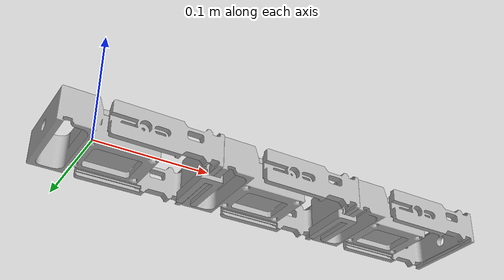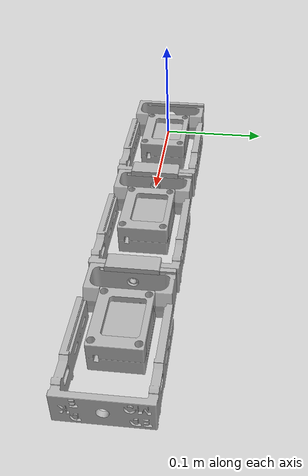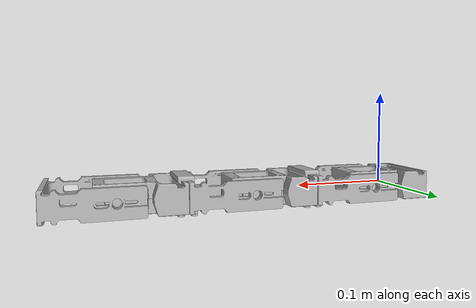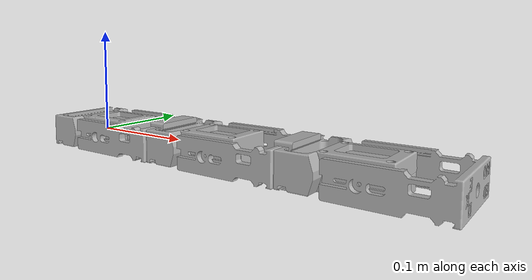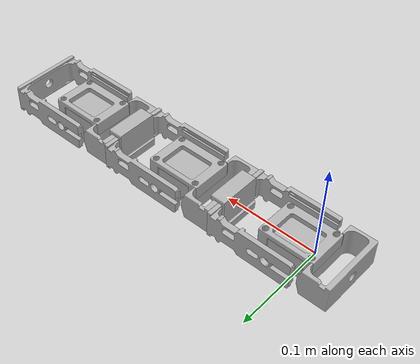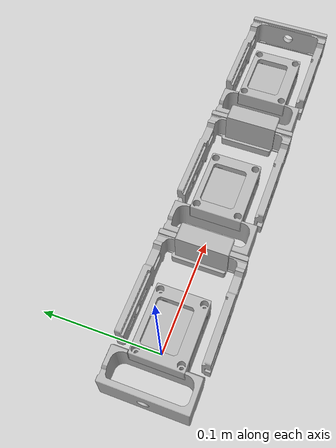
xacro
<?xml version="1.0" ?>
<robot name="edmo_snake" xmlns:xacro="http://www.ros.org/wiki/xacro">

<xacro:arg name="robot_prefix" default="" />
<xacro:property name="robot_prefix" value="$(arg robot_prefix)" />

<xacro:include filename="$(find edmo_snake_description)/urdf/materials.xacro" />
<xacro:include filename="$(find edmo_snake_description)/urdf/edmo_snake.trans" />
<xacro:include filename="$(find edmo_snake_description)/urdf/edmo_snake.gazebo" />

<xacro:property name="base_x_offset" value="0.0" />
<xacro:property name="base_y_offset" value="0.015" />
<xacro:property name="base_z_offset" value="0.02" />

<xacro:property name="arm_x_offset" value="0.027" />
<xacro:property name="arm_z_offset" value="0.02" />
<xacro:property name="cover_x_offset" value="0.02" />
<xacro:property name="cover_z_offset" value="0.02" />
<xacro:property name="straight_connector_x_offset" value="0.06" />
<xacro:property name="second_arm_x_offset" value="0.106" />

<xacro:property name="motor_x_offset" value="0.018" />
<xacro:property name="motor_y_offset" value="0.002" />
<xacro:property name="motor_z_offset" value="0.0008" />

<xacro:property name="arm_x_intertia_offset" value="0.03" />

<link name="dummy">
</link>

<link name="base_link">
  <inertial>
    <origin xyz="0.0 0.0 0.0" rpy="0 0 0"/>
    <mass value="0.040787"/>
    <inertia ixx="0.000021171851916666665" ixy="0" ixz="0" iyy="0.000028667280707362297" iyz="0" izz="0.00004372108262402896" />
  </inertial>
  <visual>
    <origin xyz="-${base_x_offset} -${base_y_offset} -${base_z_offset}" rpy="0 0 0"/>
    <geometry>
      <mesh filename="package://edmo_snake_description/meshes/base_link.stl" scale="0.001 0.001 0.001"/>
    </geometry>
    <material name="silver"/>
  </visual>
  <collision>
    <origin xyz="${base_x_offset} -${base_y_offset} -${base_z_offset}" rpy="0 0 0"/>
    <geometry>
      <mesh filename="package://edmo_snake_description/meshes/base_link.stl" scale="0.001 0.001 0.001"/>
    </geometry>
  </collision>
</link>

<link name="arm_1_1">
  <inertial>
    <origin xyz="${arm_x_intertia_offset} 0.0 0.0" rpy="0 0 0"/>
    <mass value="0.039526"/>
    <inertia ixx="0.000022493587833333332" ixy="0" ixz="0" iyy="0.00003206876133333333" iyz="0" izz="0.00004863344916666667" />
  </inertial>
  <visual>
    <origin xyz="-${arm_x_offset} -${base_y_offset} -${arm_z_offset}" rpy="0 0 0"/>
    <geometry>
      <mesh filename="package://edmo_snake_description/meshes/arm_1_1.stl" scale="0.001 0.001 0.001"/>
    </geometry>
    <material name="silver"/>
  </visual>
  <collision>
    <origin xyz="-${arm_x_offset} -${base_y_offset} -${arm_z_offset}" rpy="0 0 0"/>
    <geometry>
      <mesh filename="package://edmo_snake_description/meshes/arm_1_1.stl" scale="0.001 0.001 0.001"/>
    </geometry>
  </collision>
</link>

<link name="cover_1_1">
  <inertial>
    <origin xyz="0.0 0.0 0.0" rpy="0 0 0"/>
    <mass value="0.015429"/>
    <inertia ixx="0.0000028929375" ixy="0" ixz="0" iyy="0.00000491799375" iyz="0" izz="0.00000723234375" />
  </inertial>
  <visual>
    <origin xyz="-${cover_x_offset} -${base_y_offset} -${cover_z_offset}" rpy="0 0 0"/>
    <geometry>
      <mesh filename="package://edmo_snake_description/meshes/cover_1_1.stl" scale="0.001 0.001 0.001"/>
    </geometry>
    <material name="silver"/>
  </visual>
  <collision>
    <origin xyz="-${cover_x_offset} -${base_y_offset} -${cover_z_offset}" rpy="0 0 0"/>
    <geometry>
      <mesh filename="package://edmo_snake_description/meshes/cover_1_1.stl" scale="0.001 0.001 0.001"/>
    </geometry>
  </collision>
</link>

<link name="straight_connector_1_1">
  <inertial>
    <origin xyz="0.0 0.0 0.0" rpy="0 0 0"/>
    <mass value="0.007565"/>
    <inertia ixx="0.000002074973939693871" ixy="0" ixz="0" iyy="0.0000008986162756831851" iyz="0" izz="0.0000015031782103951184" />
  </inertial>
  <visual>
    <origin xyz="-${straight_connector_x_offset+arm_x_offset} -${base_y_offset} -${base_z_offset}" rpy="0 0 0"/>
    <geometry>
      <mesh filename="package://edmo_snake_description/meshes/straight_connector_1_1.stl" scale="0.001 0.001 0.001"/>
    </geometry>
    <material name="silver"/>
  </visual>
  <collision>
    <origin xyz="-${straight_connector_x_offset+arm_x_offset} -${base_y_offset} -${base_z_offset}" rpy="0 0 0"/>
    <geometry>
      <mesh filename="package://edmo_snake_description/meshes/straight_connector_1_1.stl" scale="0.001 0.001 0.001"/>
    </geometry>
  </collision>
</link>

<link name="clip_connector_1_1">
  <inertial>
    <origin xyz="0.0 0.0 0.0" rpy="0 0 0"/>
    <mass value="0.004143"/>
    <inertia  ixx="0.0000008225581966461201" ixy="0" ixz="0" iyy="0.00000014973490050335027" iyz="0" izz="0.0000009247245608945109" />
  </inertial>
  <visual>
    <origin xyz="-${straight_connector_x_offset+arm_x_offset} -${base_y_offset} -${base_z_offset}" rpy="0 0 0"/>
    <geometry>
      <mesh filename="package://edmo_snake_description/meshes/clip_connector_1_1.stl" scale="0.001 0.001 0.001"/>
    </geometry>
    <material name="silver"/>
  </visual>
  <collision>
    <origin xyz="-${straight_connector_x_offset+arm_x_offset} -${base_y_offset} -${base_z_offset}" rpy="0 0 0"/>
    <geometry>
      <mesh filename="package://edmo_snake_description/meshes/clip_connector_1_1.stl" scale="0.001 0.001 0.001"/>
    </geometry>
  </collision>
</link>

<link name="base_2_1">
  <inertial>
    <origin xyz="0.0 0.0 0.0" rpy="0 0 0"/>
    <mass value="0.040787"/>
    <inertia ixx="0.000021171851916666665" ixy="0" ixz="0" iyy="0.000028667280707362297" iyz="0" izz="0.00004372108262402896" />
  </inertial>
  <visual>
    <origin xyz="0.0 -${base_y_offset} -${base_z_offset}" rpy="0 0 0"/>
    <geometry>
      <mesh filename="package://edmo_snake_description/meshes/base_link.stl" scale="0.001 0.001 0.001"/>
    </geometry>
    <material name="silver"/>
  </visual>
  <collision>
    <origin xyz="0.0 -${base_y_offset} -${base_z_offset}" rpy="0 0 0"/>
    <geometry>
      <mesh filename="package://edmo_snake_description/meshes/base_link.stl" scale="0.001 0.001 0.001"/>
    </geometry>
  </collision>
</link>

<link name="cover_2_1">
  <inertial>
    <origin xyz="0.0 0.0 0.0" rpy="0 0 0"/>
    <mass value="0.015429"/>
    <inertia ixx="0.0000028929375" ixy="0" ixz="0" iyy="0.00000491799375" iyz="0" izz="0.00000723234375" />
  </inertial>
  <visual>
    <origin xyz="-${cover_x_offset} -${base_y_offset} -${cover_z_offset}" rpy="0 0 0"/>
    <geometry>
      <mesh filename="package://edmo_snake_description/meshes/cover_1_1.stl" scale="0.001 0.001 0.001"/>
    </geometry>
    <material name="silver"/>
  </visual>
  <collision>
    <origin xyz="-${cover_x_offset} -${base_y_offset} -${cover_z_offset}" rpy="0 0 0"/>
    <geometry>
      <mesh filename="package://edmo_snake_description/meshes/cover_1_1.stl" scale="0.001 0.001 0.001"/>
    </geometry>
  </collision>
</link>

<link name="arm_2_1">
  <inertial>
    <origin xyz="${arm_x_intertia_offset} 0.0 0.0" rpy="0 0 0"/>
    <mass value="0.039526"/>
    <inertia ixx="0.000022493587833333332" ixy="0" ixz="0" iyy="0.00003206876133333333" iyz="0" izz="0.00004863344916666667" />
  </inertial>
  <visual>
    <origin xyz="-${arm_x_offset} -${base_y_offset} -${arm_z_offset}" rpy="0 0 0"/>
    <geometry>
      <mesh filename="package://edmo_snake_description/meshes/arm_1_1.stl" scale="0.001 0.001 0.001"/>
    </geometry>
    <material name="silver"/>
  </visual>
  <collision>
    <origin xyz="-${arm_x_offset} -${base_y_offset} -${arm_z_offset}" rpy="0 0 0"/>
    <geometry>
      <mesh filename="package://edmo_snake_description/meshes/arm_1_1.stl" scale="0.001 0.001 0.001"/>
    </geometry>
  </collision>
</link>

<link name="straight_connector_2_1">
  <inertial>
    <origin xyz="0.0 0.0 0.0" rpy="0 0 0"/>
    <mass value="0.007565"/>
    <inertia ixx="0.000002074973939693871" ixy="0" ixz="0" iyy="0.0000008986162756831851" iyz="0" izz="0.0000015031782103951184" />
  </inertial>
  <visual>
    <origin xyz="-${straight_connector_x_offset+arm_x_offset} -${base_y_offset} -${base_z_offset}" rpy="0 0 0"/>
    <geometry>
      <mesh filename="package://edmo_snake_description/meshes/straight_connector_1_1.stl" scale="0.001 0.001 0.001"/>
    </geometry>
    <material name="silver"/>
  </visual>
  <collision>
    <origin xyz="-${straight_connector_x_offset+arm_x_offset} -${base_y_offset} -${base_z_offset}" rpy="0 0 0"/>
    <geometry>
      <mesh filename="package://edmo_snake_description/meshes/straight_connector_1_1.stl" scale="0.001 0.001 0.001"/>
    </geometry>
  </collision>
</link>

<link name="clip_connector_2_1">
  <inertial>
    <origin xyz="0.0 0.0 0.0" rpy="0 0 0"/>
    <mass value="0.004143"/>
    <inertia  ixx="0.0000008225581966461201" ixy="0" ixz="0" iyy="0.00000014973490050335027" iyz="0" izz="0.0000009247245608945109" />
  </inertial>
  <visual>
    <origin xyz="-${straight_connector_x_offset+arm_x_offset} -${base_y_offset} -${base_z_offset}" rpy="0 0 0"/>
    <geometry>
      <mesh filename="package://edmo_snake_description/meshes/clip_connector_1_1.stl" scale="0.001 0.001 0.001"/>
    </geometry>
    <material name="silver"/>
  </visual>
  <collision>
    <origin xyz="-${straight_connector_x_offset+arm_x_offset} -${base_y_offset} -${base_z_offset}" rpy="0 0 0"/>
    <geometry>
      <mesh filename="package://edmo_snake_description/meshes/clip_connector_1_1.stl" scale="0.001 0.001 0.001"/>
    </geometry>
  </collision>
</link>

<link name="base_3_1">
  <inertial>
    <origin xyz="0.0 0.0 0.0" rpy="0 0 0"/>
    <mass value="0.040787"/>
    <inertia ixx="0.000021171851916666665" ixy="0" ixz="0" iyy="0.000028667280707362297" iyz="0" izz="0.00004372108262402896" />
  </inertial>
  <visual>
    <origin xyz="0.0 -${base_y_offset} -${base_z_offset}" rpy="0 0 0"/>
    <geometry>
      <mesh filename="package://edmo_snake_description/meshes/base_link.stl" scale="0.001 0.001 0.001"/>
    </geometry>
    <material name="silver"/>
  </visual>
  <collision>
    <origin xyz="0.0 -${base_y_offset} -${base_z_offset}" rpy="0 0 0"/>
    <geometry>
      <mesh filename="package://edmo_snake_description/meshes/base_link.stl" scale="0.001 0.001 0.001"/>
    </geometry>
  </collision>
</link>

<link name="cover_3_1">
  <inertial>
    <origin xyz="0.0 0.0 0.0" rpy="0 0 0"/>
    <mass value="0.015429"/>
    <inertia ixx="0.0000028929375" ixy="0" ixz="0" iyy="0.00000491799375" iyz="0" izz="0.00000723234375" />
  </inertial>
  <visual>
    <origin xyz="-${cover_x_offset} -${base_y_offset} -${cover_z_offset}" rpy="0 0 0"/>
    <geometry>
      <mesh filename="package://edmo_snake_description/meshes/cover_1_1.stl" scale="0.001 0.001 0.001"/>
    </geometry>
    <material name="silver"/>
  </visual>
  <collision>
    <origin xyz="-${cover_x_offset} -${base_y_offset} -${cover_z_offset}" rpy="0 0 0"/>
    <geometry>
      <mesh filename="package://edmo_snake_description/meshes/cover_1_1.stl" scale="0.001 0.001 0.001"/>
    </geometry>
  </collision>
</link>

<link name="arm_3_1">
  <inertial>
    <origin xyz="${arm_x_intertia_offset} 0.0 0.0" rpy="0 0 0"/>
    <mass value="0.039526"/>
    <inertia ixx="0.000022493587833333332" ixy="0" ixz="0" iyy="0.00003206876133333333" iyz="0" izz="0.00004863344916666667" />
  </inertial>
  <visual>
    <origin xyz="-${arm_x_offset} -${base_y_offset} -${arm_z_offset}" rpy="0 0 0"/>
    <geometry>
      <mesh filename="package://edmo_snake_description/meshes/arm_1_1.stl" scale="0.001 0.001 0.001"/>
    </geometry>
    <material name="silver"/>
  </visual>
  <collision>
    <origin xyz="-${arm_x_offset} -${base_y_offset} -${arm_z_offset}" rpy="0 0 0"/>
    <geometry>
      <mesh filename="package://edmo_snake_description/meshes/arm_1_1.stl" scale="0.001 0.001 0.001"/>
    </geometry>
  </collision>
</link>

<link name="motor_box_1">
  <inertial>
    <origin xyz="0.0 0.0 0.0" rpy="0 0 0"/>
    <mass value="0.057"/>
    <inertia ixx="0.0000090309375" ixy="0" ixz="0" iyy="0.000008846874999999999" iyz="0" izz="0.000014265437499999999" />
  </inertial>
  <visual>
    <origin xyz="0.003 -0.058 -0.01" rpy="0 0 0"/>
    <geometry>
      <mesh filename="package://edmo_snake_description/meshes/motor_box_1.stl" scale="0.001 0.001 0.001"/>
    </geometry>
    <material name="silver"/>
  </visual>
  <collision>
    <origin xyz="0.003 -0.058 -0.01" rpy="0 0 0"/>
    <geometry>
      <mesh filename="package://edmo_snake_description/meshes/motor_box_1.stl" scale="0.001 0.001 0.001"/>
    </geometry>
  </collision>
</link>

<link name="motor_box_2">
  <inertial>
    <origin xyz="0.0 0.0 0.0" rpy="0 0 0"/>
    <mass value="0.057"/>
    <inertia ixx="0.0000090309375" ixy="0" ixz="0" iyy="0.000008846874999999999" iyz="0" izz="0.000014265437499999999" />
  </inertial>
  <visual>
    <origin xyz="0.003 -0.058 -0.01" rpy="0 0 0"/>
    <geometry>
      <mesh filename="package://edmo_snake_description/meshes/motor_box_1.stl" scale="0.001 0.001 0.001"/>
    </geometry>
    <material name="silver"/>
  </visual>
  <collision>
    <origin xyz="0.003 -0.058 -0.01" rpy="0 0 0"/>
    <geometry>
      <mesh filename="package://edmo_snake_description/meshes/motor_box_1.stl" scale="0.001 0.001 0.001"/>
    </geometry>
  </collision>
</link>

<link name="motor_box_3">
  <inertial>
    <origin xyz="0.0 0.0 0.0" rpy="0 0 0"/>
    <mass value="0.057"/>
    <inertia ixx="0.0000090309375" ixy="0" ixz="0" iyy="0.000008846874999999999" iyz="0" izz="0.000014265437499999999" />
  </inertial>
  <visual>
    <origin xyz="0.003 -0.058 -0.01" rpy="0 0 0"/>
    <geometry>
      <mesh filename="package://edmo_snake_description/meshes/motor_box_1.stl" scale="0.001 0.001 0.001"/>
    </geometry>
    <material name="silver"/>
  </visual>
  <collision>
    <origin xyz="0.003 -0.058 -0.01" rpy="0 0 0"/>
    <geometry>
      <mesh filename="package://edmo_snake_description/meshes/motor_box_1.stl" scale="0.001 0.001 0.001"/>
    </geometry>
  </collision>
</link>

<joint name="Rigid0" type="fixed">
  <origin xyz="0.0 0.0 0.0" rpy="0 0 0"/>
  <parent link="dummy"/>
  <child link="base_link"/>
</joint>

<joint name="Rev1" type="revolute">
  <origin xyz="${arm_x_offset} 0.0 0.0" rpy="0 0 0"/>
  <parent link="base_link"/>
  <child link="arm_1_1"/>
  <axis xyz="0.0 1.0 0.0"/>
  <!-- Joint limits -->
  <limit lower="-2.00"
        upper="2.00"
        effort="2.0"
        velocity="10.0"/>
</joint>

<joint name="Rigid2" type="fixed">
  <origin xyz="${cover_x_offset} 0.0 0.0" rpy="0 0 0"/>
  <parent link="base_link"/>
  <child link="cover_1_1"/>
</joint>

<joint name="Rigid3" type="fixed">
  <origin xyz="${straight_connector_x_offset} 0.0 0.0" rpy="0 0 0"/>
  <parent link="arm_1_1"/>
  <child link="straight_connector_1_1"/>
</joint>

<joint name="Rigid4" type="fixed">
  <origin xyz="${straight_connector_x_offset} 0.0 0.0" rpy="0 0 0"/>
  <parent link="arm_1_1"/>
  <child link="clip_connector_1_1"/>
</joint>

<joint name="Rigid5" type="fixed">
  <origin xyz="${second_arm_x_offset} 0.0 0.0" rpy="0 0 0"/>
  <parent link="arm_1_1"/>
  <child link="base_2_1"/>
</joint>

<joint name="Rigid7" type="fixed">
  <origin xyz="${cover_x_offset} 0.0 0.0" rpy="0 0 0"/>
  <parent link="base_2_1"/>
  <child link="cover_2_1"/>
</joint>

<joint name="Rev8" type="revolute">
  <origin xyz="${arm_x_offset} 0.0 0.0" rpy="0 0 0"/>
  <parent link="base_2_1"/>
  <child link="arm_2_1"/>
  <axis xyz="0.0 1.0 0.0"/>
  <!-- Joint limits -->
  <limit lower="-2.00"
        upper="2.00"
        effort="2.0"
        velocity="10.0"/>
</joint>

<joint name="Rigid9" type="fixed">
  <origin xyz="${straight_connector_x_offset} 0.0 0.0" rpy="0 0 0"/>
  <parent link="arm_2_1"/>
  <child link="straight_connector_2_1"/>
</joint>

<joint name="Rigid10" type="fixed">
  <origin xyz="${second_arm_x_offset} 0.0 0.0" rpy="0 0 0"/>
  <parent link="arm_2_1"/>
  <child link="base_3_1"/>
</joint>

<joint name="Rigid11" type="fixed">
  <origin xyz="${straight_connector_x_offset} 0.0 0.0" rpy="0 0 0"/>
  <parent link="arm_2_1"/>
  <child link="clip_connector_2_1"/>
</joint>

<joint name="Rigid12" type="fixed">
  <origin xyz="${cover_x_offset} 0.0 0.0" rpy="0 0 0"/>
  <parent link="base_3_1"/>
  <child link="cover_3_1"/>
</joint>

<joint name="Rev13" type="revolute">
  <origin xyz="${arm_x_offset} 0.0 0.0" rpy="0 0 0"/>
  <parent link="base_3_1"/>
  <child link="arm_3_1"/>
  <axis xyz="0.0 1.0 0.0"/>
  <!-- Joint limits -->
  <limit lower="-2.00"
        upper="2.00"
        effort="2.0"
        velocity="10.0"/>
</joint>

<joint name="Rigid14" type="fixed">
  <origin xyz="${motor_x_offset} ${motor_y_offset} ${motor_z_offset}" rpy="0 0 0"/>
  <parent link="base_link"/>
  <child link="motor_box_1"/>
</joint>

<joint name="Rigid15" type="fixed">
  <origin xyz="${motor_x_offset} ${motor_y_offset} ${motor_z_offset}" rpy="0 0 0"/>
  <parent link="base_2_1"/>
  <child link="motor_box_2"/>
</joint>

<joint name="Rigid16" type="fixed">
  <origin xyz="${motor_x_offset} ${motor_y_offset} ${motor_z_offset}" rpy="0 0 0"/>
  <parent link="base_3_1"/>
  <child link="motor_box_3"/>
</joint>

<gazebo>
  <plugin name="control" filename="libgazebo_ros_control.so">
    <robotNamespace>/${robot_prefix}/edmo_snake_controller</robotNamespace>
  </plugin>
</gazebo>

<gazebo>
  <plugin name="p3d_base_controller" filename="libgazebo_ros_p3d.so">
    <alwaysOn>true</alwaysOn>
    <updateRate>1.0</updateRate>
    <bodyName>base_link</bodyName>
    <topicName>/${robot_prefix}/edmo_snake/state</topicName>
    <gaussianNoise>0.0</gaussianNoise>
    <frameName>world</frameName>
    <xyzOffsets>0 0 0</xyzOffsets>
    <rpyOffsets>0 0 0</rpyOffsets>
  </plugin>
</gazebo>

</robot>

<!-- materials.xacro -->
<robot name="edmo_snake" xmlns:xacro="http://www.ros.org/wiki/xacro" >

<material name="silver">
  <color rgba="0.700 0.700 0.700 1.000"/>
</material>

</robot>

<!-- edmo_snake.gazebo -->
<robot name="edmo_snake" xmlns:xacro="http://www.ros.org/wiki/xacro" >

<xacro:property name="body_color" value="Gazebo/Red" />
<xacro:property name="motor_color" value="Gazebo/Black" />

<gazebo reference="base_link">
  <material>${body_color}</material>
  <kp>100000.0</kp>
  <kd>1.0</kd>
  <mu1>20.0</mu1>
  <mu2>20.0</mu2>
  <selfCollide>true</selfCollide>
  <gravity>true</gravity>
</gazebo>

<gazebo reference="arm_1_1">
  <material>${body_color}</material>
  <kp>100000.0</kp>
  <kd>1.0</kd>
  <mu1>20.0</mu1>
  <mu2>20.0</mu2>
  <selfCollide>true</selfCollide>
</gazebo>

<gazebo reference="cover_1_1">
  <material>${body_color}</material>
  <kp>100000.0</kp>
  <kd>1.0</kd>
  <mu1>20.0</mu1>
  <mu2>20.0</mu2>
  <selfCollide>true</selfCollide>
</gazebo>

<gazebo reference="straight_connector_1_1">
  <material>${body_color}</material>
  <kp>100000.0</kp>
  <kd>1.0</kd>
  <mu1>20.0</mu1>
  <mu2>20.0</mu2>
  <selfCollide>true</selfCollide>
</gazebo>

<gazebo reference="clip_connector_1_1">
  <material>${body_color}</material>
  <kp>100000.0</kp>
  <kd>1.0</kd>
  <mu1>20.0</mu1>
  <mu2>20.0</mu2>
  <selfCollide>true</selfCollide>
</gazebo>

<gazebo reference="base_2_1">
  <material>${body_color}</material>
  <kp>100000.0</kp>
  <kd>1.0</kd>
  <mu1>20.0</mu1>
  <mu2>20.0</mu2>
  <selfCollide>true</selfCollide>
</gazebo>

<gazebo reference="cover_2_1">
  <material>${body_color}</material>
  <kp>100000.0</kp>
  <kd>1.0</kd>
  <mu1>20.0</mu1>
  <mu2>20.0</mu2>
  <selfCollide>true</selfCollide>
</gazebo>

<gazebo reference="arm_2_1">
  <material>${body_color}</material>
  <kp>100000.0</kp>
  <kd>1.0</kd>
  <mu1>20.0</mu1>
  <mu2>20.0</mu2>
  <selfCollide>true</selfCollide>
</gazebo>

<gazebo reference="straight_connector_2_1">
  <material>${body_color}</material>
  <kp>100000.0</kp>
  <kd>1.0</kd>
  <mu1>20.0</mu1>
  <mu2>20.0</mu2>
  <selfCollide>true</selfCollide>
</gazebo>

<gazebo reference="clip_connector_2_1">
  <material>${body_color}</material>
  <kp>100000.0</kp>
  <kd>1.0</kd>
  <mu1>20.0</mu1>
  <mu2>20.0</mu2>
  <selfCollide>true</selfCollide>
</gazebo>

<gazebo reference="base_3_1">
  <material>${body_color}</material>
  <kp>100000.0</kp>
  <kd>1.0</kd>
  <mu1>20.0</mu1>
  <mu2>20.0</mu2>
  <selfCollide>true</selfCollide>
</gazebo>

<gazebo reference="cover_3_1">
  <material>${body_color}</material>
  <kp>100000.0</kp>
  <kd>1.0</kd>
  <mu1>20.0</mu1>
  <mu2>20.0</mu2>
  <selfCollide>true</selfCollide>
</gazebo>

<gazebo reference="arm_3_1">
  <material>${body_color}</material>
  <kp>100000.0</kp>
  <kd>1.0</kd>
  <mu1>20.0</mu1>
  <mu2>20.0</mu2>
  <selfCollide>true</selfCollide>
</gazebo>

<gazebo reference="motor_box_1">
  <material>${motor_color}</material>
  <kp>100000.0</kp>
  <kd>1.0</kd>
  <mu1>20.0</mu1>
  <mu2>20.0</mu2>
  <selfCollide>true</selfCollide>
</gazebo>

<gazebo reference="motor_box_2">
  <material>${motor_color}</material>
  <kp>100000.0</kp>
  <kd>1.0</kd>
  <mu1>20.0</mu1>
  <mu2>20.0</mu2>
  <selfCollide>true</selfCollide>
</gazebo>

<gazebo reference="motor_box_3">
  <material>${motor_color}</material>
  <kp>100000.0</kp>
  <kd>1.0</kd>
  <mu1>20.0</mu1>
  <mu2>20.0</mu2>
  <selfCollide>true</selfCollide>
</gazebo>

</robot>
